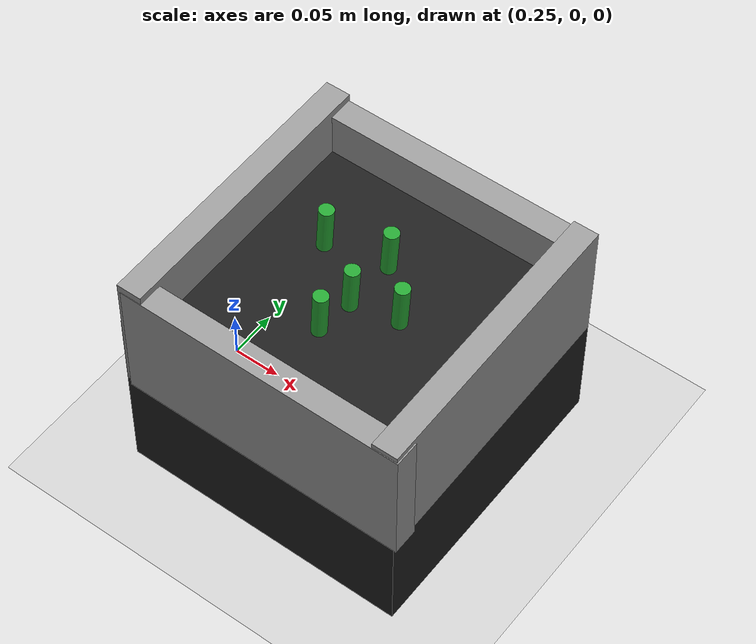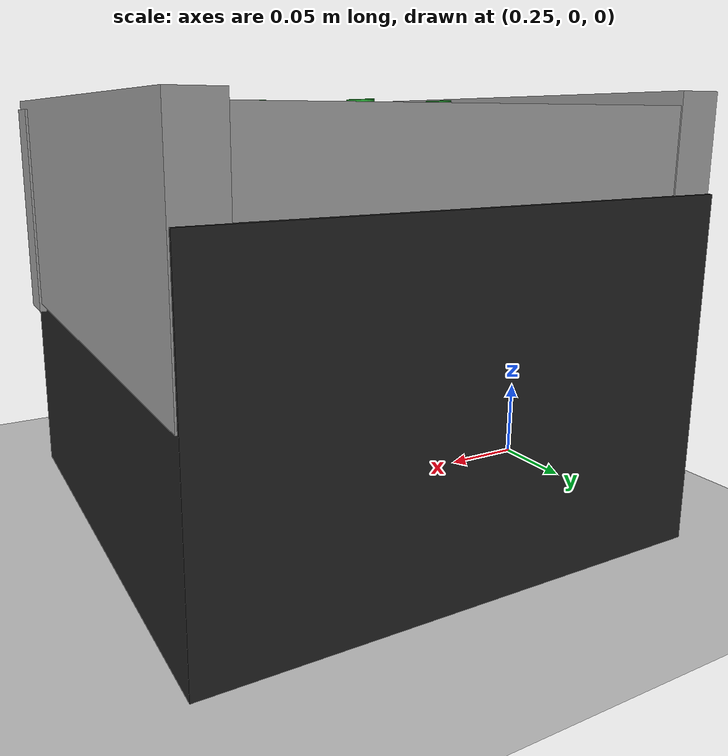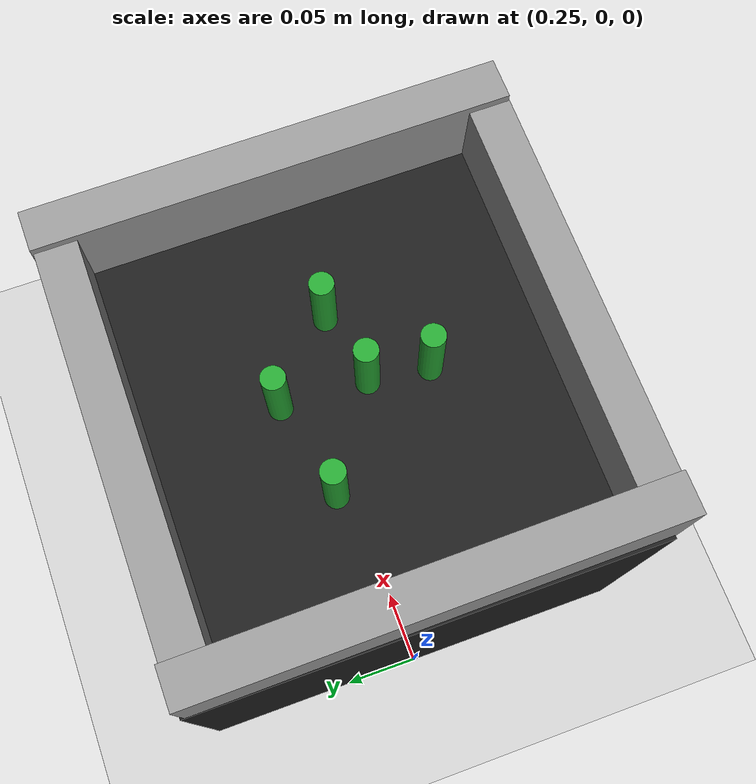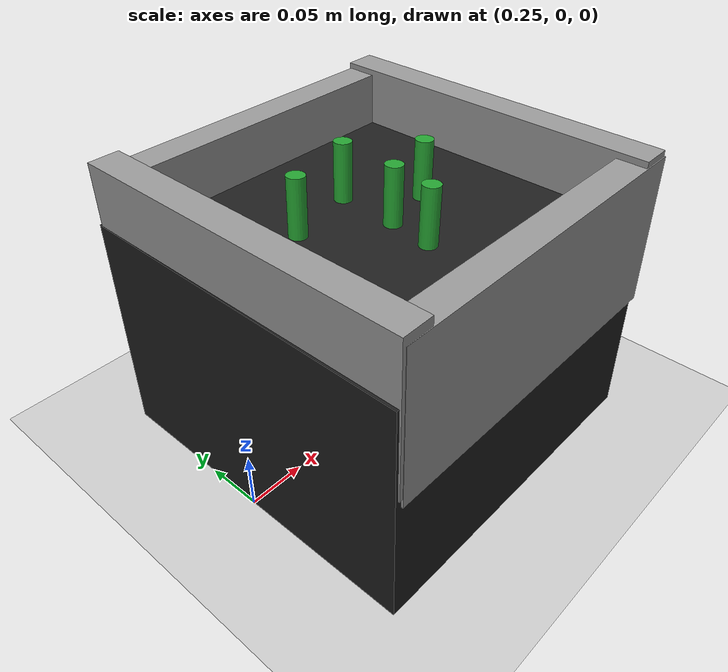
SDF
<sdf version="1.6">
 <world name="empty">
  <light name="sun" type="directional">
   <pose>0 0 10 0 -0 0</pose>
   <diffuse>0.8 0.8 0.8 1</diffuse>
   <specular>0.2 0.2 0.2 1</specular>
   <attenuation>
    <range>1000</range>
    <constant>0.9</constant>
    <linear>0.01</linear>
    <quadratic>0.001</quadratic>
   </attenuation>
   <direction>-0.5 0.1 -0.9</direction>
  </light>
  <model name="ground_plane">
   <static>1</static>
   <link name="link">
    <collision name="collision">
     <geometry><plane><normal>0 0 1</normal><size>100 100</size></plane></geometry>
     <surface><friction><ode><mu>100</mu><mu2>50</mu2></ode></friction></surface>
    </collision>
    <visual name="visual">
     <cast_shadows>0</cast_shadows>
     <geometry><plane><normal>0 0 1</normal><size>100 100</size></plane></geometry>
     <material>
      <script><uri>file://media/materials/scripts/gazebo.material</uri><name>Gazebo/Grey</name></script>
     </material>
    </visual>
   </link>
  </model>
  <physics name="default_physics" default="0" type="ode">
   <max_step_size>0.001</max_step_size>
   <real_time_factor>1</real_time_factor>
   <real_time_update_rate>1000</real_time_update_rate>
  </physics>
  <model name="coke_can_box_model">
   <pose>0.396789 -0.052916 0.224629 -0.011988 0.047224 7.7e-05</pose>
   <link name="coke_can">
    <inertial>
     <mass>0.001</mass>
     <inertia><ixx>0.00016</ixx><ixy>0</ixy><ixz>0</ixz><iyy>0.00016</iyy><iyz>0</iyz><izz>6e-05</izz></inertia>
    </inertial>
    <collision name="collision">
     <geometry><cylinder><radius>0.0075</radius><length>0.05</length></cylinder></geometry>
     <surface>
      <friction><ode><mu>100</mu><mu2>100</mu2></ode></friction>
      <contact><ode><kp>1e+07</kp><kd>1</kd><min_depth>0.001</min_depth><max_vel>0.1</max_vel></ode></contact>
     </surface>
    </collision>
    <visual name="visual">
     <geometry><cylinder><radius>0.0075</radius><length>0.05</length></cylinder></geometry>
     <material>
      <script><name>Gazebo/Green</name><uri>file://media/materials/scripts/gazebo.material</uri></script>
     </material>
    </visual>
   </link>
  </model>
  <model name="coke_can_box_model_2">
   <pose>0.401206 -0.014243 0.224987 -0.023015 0.04885 -0.000875</pose>
   <link name="coke_can">
    <inertial>
     <mass>0.001</mass>
     <inertia><ixx>0.00016</ixx><ixy>0</ixy><ixz>0</ixz><iyy>0.00016</iyy><iyz>0</iyz><izz>6e-05</izz></inertia>
    </inertial>
    <collision name="collision">
     <geometry><cylinder><radius>0.0075</radius><length>0.05</length></cylinder></geometry>
     <surface>
      <friction><ode><mu>100</mu><mu2>100</mu2></ode></friction>
      <contact><ode><kp>1e+07</kp><kd>1</kd><min_depth>0.001</min_depth><max_vel>0.1</max_vel></ode></contact>
     </surface>
    </collision>
    <visual name="visual">
     <geometry><cylinder><radius>0.0075</radius><length>0.05</length></cylinder></geometry>
     <material>
      <script><name>Gazebo/Green</name><uri>file://media/materials/scripts/gazebo.material</uri></script>
     </material>
    </visual>
   </link>
  </model>
  <model name="table_box_model">
   <static>1</static>
   <pose>0.4 0 0.1 0 -0 1.5708</pose>
   <link name="table_box_link">
    <inertial>
     <mass>1</mass>
     <inertia>
      <ixx>0.166667</ixx>
      <ixy>0</ixy>
      <ixz>0</ixz>
      <iyy>0.166667</iyy>
      <iyz>0</iyz>
      <izz>0.166667</izz>
     </inertia>
    </inertial>
    <collision name="collision">
     <geometry><box><size>0.3 0.3 0.2</size></box></geometry>
     <surface><friction><ode><mu>0.6</mu><mu2>0.6</mu2></ode></friction></surface>
    </collision>
    <visual name="visual">
     <geometry><box><size>0.3 0.3 0.2</size></box></geometry>
     <material>
      <script><name>Gazebo/Black</name><uri>file://media/materials/scripts/gazebo.material</uri></script>
     </material>
    </visual>
   </link>
  </model>
  <model name="bbox">
   <link name="link">
    <inertial>
     <mass>0.00104021</mass>
     <inertia>
      <ixx>1.57995e-06</ixx>
      <ixy>0</ixy>
      <ixz>0</ixz>
      <iyy>9.26966e-06</iyy>
      <iyz>0</iyz>
      <izz>7.80938e-06</izz>
     </inertia>
    </inertial>
    <pose>0.404637 -0.138773 0.17942 -0 -0 -0</pose>
    <visual name="visual">
     <geometry><box><size>0.298998 0.026273 0.132424</size></box></geometry>
     <material>
      <script><name>Gazebo/Grey</name><uri>file://media/materials/scripts/gazebo.material</uri></script>
      <emissive>0 0 0 1</emissive>
     </material>
    </visual>
    <collision name="collision">
     <geometry><box><size>0.298998 0.026273 0.132424</size></box></geometry>
     <surface>
      <friction>
       <ode><mu>1</mu><mu2>1</mu2><fdir1>0 0 0</fdir1><slip1>0</slip1><slip2>0</slip2></ode>
       <torsional>
        <coefficient>1</coefficient>
        <patch_radius>0</patch_radius>
        <surface_radius>0</surface_radius>
        <use_patch_radius>1</use_patch_radius>
        <ode><slip>0</slip></ode>
       </torsional>
      </friction>
      <bounce><restitution_coefficient>0</restitution_coefficient><threshold>1e+06</threshold></bounce>
      <contact>
       <collide_without_contact>0</collide_without_contact>
       <collide_without_contact_bitmask>1</collide_without_contact_bitmask>
       <collide_bitmask>1</collide_bitmask>
       <ode>
        <soft_cfm>0</soft_cfm>
        <soft_erp>0.2</soft_erp>
        <kp>1e+13</kp>
        <kd>1</kd>
        <max_vel>0.01</max_vel>
        <min_depth>0</min_depth>
       </ode>
       <bullet>
        <split_impulse>1</split_impulse>
        <split_impulse_penetration_threshold>-0.01</split_impulse_penetration_threshold>
        <soft_cfm>0</soft_cfm>
        <soft_erp>0.2</soft_erp>
        <kp>1e+13</kp>
        <kd>1</kd>
       </bullet>
      </contact>
     </surface>
    </collision>
   </link>
   <link name="link_clone">
    <inertial>
     <mass>0.00104021</mass>
     <inertia>
      <ixx>1.57995e-06</ixx>
      <ixy>0</ixy>
      <ixz>0</ixz>
      <iyy>9.26966e-06</iyy>
      <iyz>0</iyz>
      <izz>7.80938e-06</izz>
     </inertia>
    </inertial>
    <pose>0.400076 0.13368 0.17981 -1e-05 -0 -0.000119</pose>
    <visual name="visual">
     <geometry><box><size>0.298998 0.026273 0.132424</size></box></geometry>
     <material>
      <script><name>Gazebo/Grey</name><uri>file://media/materials/scripts/gazebo.material</uri></script>
      <shader type="pixel"/>
      <emissive>0 0 0 1</emissive>
     </material>
    </visual>
    <collision name="collision">
     <geometry><box><size>0.298998 0.026273 0.132424</size></box></geometry>
     <surface>
      <friction>
       <ode><mu>1</mu><mu2>1</mu2><fdir1>0 0 0</fdir1><slip1>0</slip1><slip2>0</slip2></ode>
       <torsional>
        <coefficient>1</coefficient>
        <patch_radius>0</patch_radius>
        <surface_radius>0</surface_radius>
        <use_patch_radius>1</use_patch_radius>
        <ode><slip>0</slip></ode>
       </torsional>
      </friction>
      <bounce><restitution_coefficient>0</restitution_coefficient><threshold>1e+06</threshold></bounce>
      <contact>
       <collide_without_contact>0</collide_without_contact>
       <collide_without_contact_bitmask>1</collide_without_contact_bitmask>
       <collide_bitmask>1</collide_bitmask>
       <ode>
        <soft_cfm>0</soft_cfm>
        <soft_erp>0.2</soft_erp>
        <kp>1e+13</kp>
        <kd>1</kd>
        <max_vel>0.01</max_vel>
        <min_depth>0</min_depth>
       </ode>
       <bullet>
        <split_impulse>1</split_impulse>
        <split_impulse_penetration_threshold>-0.01</split_impulse_penetration_threshold>
        <soft_cfm>0</soft_cfm>
        <soft_erp>0.2</soft_erp>
        <kp>1e+13</kp>
        <kd>1</kd>
       </bullet>
      </contact>
     </surface>
    </collision>
   </link>
   <link name="link_clone_0">
    <inertial>
     <mass>0.00104021</mass>
     <inertia>
      <ixx>1.57995e-06</ixx>
      <ixy>0</ixy>
      <ixz>0</ixz>
      <iyy>9.26966e-06</iyy>
      <iyz>0</iyz>
      <izz>7.80938e-06</izz>
     </inertia>
    </inertial>
    <pose>0.538712 -0.001579 0.1848 0 -1e-05 -1.56405</pose>
    <visual name="visual">
     <geometry><box><size>0.298998 0.026273 0.132424</size></box></geometry>
     <material>
      <script><name>Gazebo/Grey</name><uri>file://media/materials/scripts/gazebo.material</uri></script>
      <shader type="pixel"/>
      <emissive>0 0 0 1</emissive>
     </material>
    </visual>
    <collision name="collision">
     <geometry><box><size>0.298998 0.026273 0.132424</size></box></geometry>
     <surface>
      <friction>
       <ode><mu>1</mu><mu2>1</mu2><fdir1>0 0 0</fdir1><slip1>0</slip1><slip2>0</slip2></ode>
       <torsional>
        <coefficient>1</coefficient>
        <patch_radius>0</patch_radius>
        <surface_radius>0</surface_radius>
        <use_patch_radius>1</use_patch_radius>
        <ode><slip>0</slip></ode>
       </torsional>
      </friction>
      <bounce><restitution_coefficient>0</restitution_coefficient><threshold>1e+06</threshold></bounce>
      <contact>
       <collide_without_contact>0</collide_without_contact>
       <collide_without_contact_bitmask>1</collide_without_contact_bitmask>
       <collide_bitmask>1</collide_bitmask>
       <ode>
        <soft_cfm>0</soft_cfm>
        <soft_erp>0.2</soft_erp>
        <kp>1e+13</kp>
        <kd>1</kd>
        <max_vel>0.01</max_vel>
        <min_depth>0</min_depth>
       </ode>
       <bullet>
        <split_impulse>1</split_impulse>
        <split_impulse_penetration_threshold>-0.01</split_impulse_penetration_threshold>
        <soft_cfm>0</soft_cfm>
        <soft_erp>0.2</soft_erp>
        <kp>1e+13</kp>
        <kd>1</kd>
       </bullet>
      </contact>
     </surface>
    </collision>
   </link>
   <link name="link_clone_0_clone">
    <inertial>
     <mass>0.00104021</mass>
     <inertia>
      <ixx>1.57995e-06</ixx>
      <ixy>0</ixy>
      <ixz>0</ixz>
      <iyy>9.26966e-06</iyy>
      <iyz>0</iyz>
      <izz>7.80938e-06</izz>
     </inertia>
    </inertial>
    <pose>0.264375 -0.001947 0.18719 -0 -2e-05 -1.56415</pose>
    <visual name="visual">
     <geometry><box><size>0.298998 0.026273 0.132424</size></box></geometry>
     <material>
      <script><name>Gazebo/Grey</name><uri>file://media/materials/scripts/gazebo.material</uri></script>
      <shader type="pixel"/>
      <emissive>0 0 0 1</emissive>
     </material>
    </visual>
    <collision name="collision">
     <geometry><box><size>0.298998 0.026273 0.132424</size></box></geometry>
     <surface>
      <friction>
       <ode><mu>1</mu><mu2>1</mu2><fdir1>0 0 0</fdir1><slip1>0</slip1><slip2>0</slip2></ode>
       <torsional>
        <coefficient>1</coefficient>
        <patch_radius>0</patch_radius>
        <surface_radius>0</surface_radius>
        <use_patch_radius>1</use_patch_radius>
        <ode><slip>0</slip></ode>
       </torsional>
      </friction>
      <bounce><restitution_coefficient>0</restitution_coefficient><threshold>1e+06</threshold></bounce>
      <contact>
       <collide_without_contact>0</collide_without_contact>
       <collide_without_contact_bitmask>1</collide_without_contact_bitmask>
       <collide_bitmask>1</collide_bitmask>
       <ode>
        <soft_cfm>0</soft_cfm>
        <soft_erp>0.2</soft_erp>
        <kp>1e+13</kp>
        <kd>1</kd>
        <max_vel>0.01</max_vel>
        <min_depth>0</min_depth>
       </ode>
       <bullet>
        <split_impulse>1</split_impulse>
        <split_impulse_penetration_threshold>-0.01</split_impulse_penetration_threshold>
        <soft_cfm>0</soft_cfm>
        <soft_erp>0.2</soft_erp>
        <kp>1e+13</kp>
        <kd>1</kd>
       </bullet>
      </contact>
     </surface>
    </collision>
   </link>
   <joint name="link_JOINT_7" type="fixed">
    <parent>link</parent>
    <child>link_clone_0</child>
    <physics>
     <ode><limit><cfm>0</cfm><erp>0.2</erp></limit><suspension><cfm>0</cfm><erp>0.2</erp></suspension></ode>
    </physics>
   </joint>
   <joint name="link_clone_0_JOINT_8" type="fixed">
    <parent>link_clone_0</parent>
    <child>link_clone</child>
    <physics>
     <ode><limit><cfm>0</cfm><erp>0.2</erp></limit><suspension><cfm>0</cfm><erp>0.2</erp></suspension></ode>
    </physics>
   </joint>
   <joint name="link_clone_0_clone_JOINT_6" type="fixed">
    <parent>link_clone_0_clone</parent>
    <child>link</child>
    <physics>
     <ode><limit><cfm>0</cfm><erp>0.2</erp></limit><suspension><cfm>0</cfm><erp>0.2</erp></suspension></ode>
    </physics>
   </joint>
   <joint name="link_clone_JOINT_9" type="fixed">
    <parent>link_clone</parent>
    <child>link_clone_0_clone</child>
    <physics>
     <ode><limit><cfm>0</cfm><erp>0.2</erp></limit><suspension><cfm>0</cfm><erp>0.2</erp></suspension></ode>
    </physics>
   </joint>
   <static>1</static>
  </model>
  <gravity>0 0 -9.81</gravity>
  <magnetic_field>6e-06 2.3e-05 -4.2e-05</magnetic_field>
  <atmosphere type="adiabatic"/>
  <scene><ambient>0.4 0.4 0.4 1</ambient><background>0.7 0.7 0.7 1</background><shadows>1</shadows></scene>
  <spherical_coordinates>
   <surface_model>EARTH_WGS84</surface_model>
   <latitude_deg>0</latitude_deg>
   <longitude_deg>0</longitude_deg>
   <elevation>0</elevation>
   <heading_deg>0</heading_deg>
  </spherical_coordinates>
  <model name="coke_can_box_model_2_clone">
   <pose>0.403216 0.040306 0.224979 -0.021892 0.048025 -0.000823</pose>
   <link name="coke_can">
    <inertial>
     <mass>0.001</mass>
     <inertia><ixx>0.00016</ixx><ixy>0</ixy><ixz>0</ixz><iyy>0.00016</iyy><iyz>0</iyz><izz>6e-05</izz></inertia>
    </inertial>
    <collision name="collision">
     <geometry><cylinder><radius>0.0075</radius><length>0.05</length></cylinder></geometry>
     <surface>
      <friction><ode><mu>100</mu><mu2>100</mu2></ode></friction>
      <contact><ode><kp>1e+07</kp><kd>1</kd><min_depth>0.001</min_depth><max_vel>0.1</max_vel></ode></contact>
     </surface>
    </collision>
    <visual name="visual">
     <geometry><cylinder><radius>0.0075</radius><length>0.05</length></cylinder></geometry>
     <material>
      <script><name>Gazebo/Green</name><uri>file://media/materials/scripts/gazebo.material</uri></script>
     </material>
    </visual>
   </link>
  </model>
  <model name="coke_can_box_model_2_clone_0">
   <pose>0.341227 0.026857 0.224961 -0.021314 0.048987 -0.0008</pose>
   <link name="coke_can">
    <inertial>
     <mass>0.001</mass>
     <inertia><ixx>0.00016</ixx><ixy>0</ixy><ixz>0</ixz><iyy>0.00016</iyy><iyz>0</iyz><izz>6e-05</izz></inertia>
    </inertial>
    <collision name="collision">
     <geometry><cylinder><radius>0.0075</radius><length>0.05</length></cylinder></geometry>
     <surface>
      <friction><ode><mu>100</mu><mu2>100</mu2></ode></friction>
      <contact><ode><kp>1e+07</kp><kd>1</kd><min_depth>0.001</min_depth><max_vel>0.1</max_vel></ode></contact>
     </surface>
    </collision>
    <visual name="visual">
     <geometry><cylinder><radius>0.0075</radius><length>0.05</length></cylinder></geometry>
     <material>
      <script><name>Gazebo/Green</name><uri>file://media/materials/scripts/gazebo.material</uri></script>
     </material>
    </visual>
   </link>
  </model>
  <model name="coke_can_box_model_2_clone_1">
   <pose>0.448111 -0.003947 0.224905 -0.014919 0.045107 -0.000504</pose>
   <link name="coke_can">
    <inertial>
     <mass>0.001</mass>
     <inertia><ixx>0.00016</ixx><ixy>0</ixy><ixz>0</ixz><iyy>0.00016</iyy><iyz>0</iyz><izz>6e-05</izz></inertia>
    </inertial>
    <collision name="collision">
     <geometry><cylinder><radius>0.0075</radius><length>0.05</length></cylinder></geometry>
     <surface>
      <friction><ode><mu>100</mu><mu2>100</mu2></ode></friction>
      <contact><ode><kp>1e+07</kp><kd>1</kd><min_depth>0.001</min_depth><max_vel>0.1</max_vel></ode></contact>
     </surface>
    </collision>
    <visual name="visual">
     <geometry><cylinder><radius>0.0075</radius><length>0.05</length></cylinder></geometry>
     <material>
      <script><name>Gazebo/Green</name><uri>file://media/materials/scripts/gazebo.material</uri></script>
     </material>
    </visual>
   </link>
  </model>
 </world>
</sdf>
